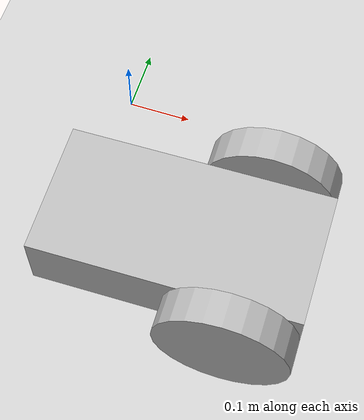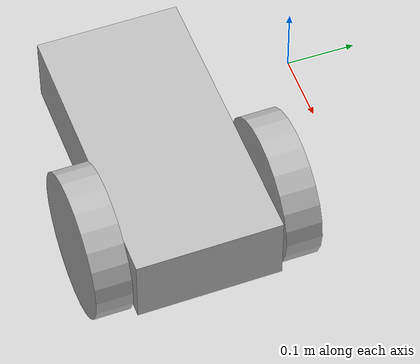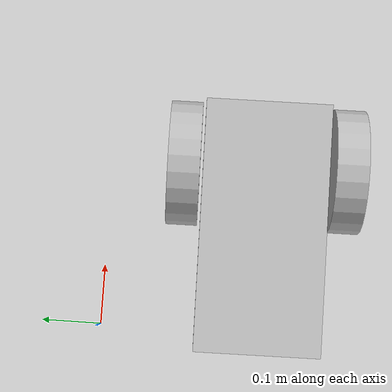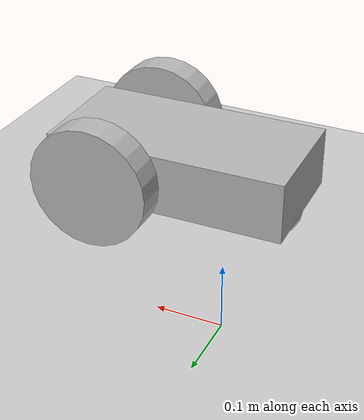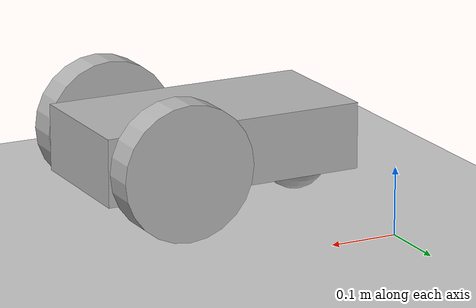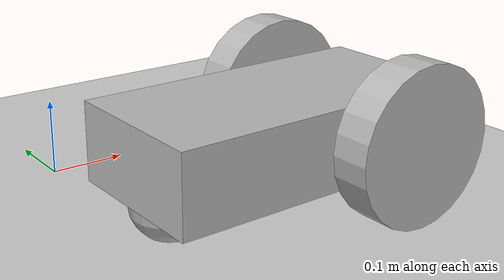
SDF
<sdf version="1.6">
 <world name="default">
  <light name="sun" type="directional">
   <pose>0 0 10 0 -0 0</pose>
   <diffuse>0.8 0.8 0.8 1</diffuse>
   <specular>0.2 0.2 0.2 1</specular>
   <attenuation>
    <range>1000</range>
    <constant>0.9</constant>
    <linear>0.01</linear>
    <quadratic>0.001</quadratic>
   </attenuation>
   <direction>-0.5 0.1 -0.9</direction>
  </light>
  <model name="ground_plane">
   <static>1</static>
   <link name="link">
    <collision name="collision">
     <geometry><plane><normal>0 0 1</normal><size>100 100</size></plane></geometry>
     <surface>
      <contact><collide_bitmask>65535</collide_bitmask></contact>
      <friction><ode><mu>100</mu><mu2>50</mu2></ode></friction>
     </surface>
    </collision>
    <visual name="visual">
     <cast_shadows>0</cast_shadows>
     <geometry><plane><normal>0 0 1</normal><size>100 100</size></plane></geometry>
     <material>
      <script><uri>file://media/materials/scripts/gazebo.material</uri><name>Gazebo/Grey</name></script>
     </material>
    </visual>
   </link>
  </model>
  <gravity>0 0 -9.8</gravity>
  <magnetic_field>6e-06 2.3e-05 -4.2e-05</magnetic_field>
  <atmosphere type="adiabatic"/>
  <physics name="default_physics" default="0" type="ode">
   <max_step_size>0.001</max_step_size>
   <real_time_factor>1</real_time_factor>
   <real_time_update_rate>1000</real_time_update_rate>
  </physics>
  <scene><ambient>0.4 0.4 0.4 1</ambient><background>0.7 0.7 0.7 1</background><shadows>1</shadows></scene>
  <spherical_coordinates>
   <surface_model>EARTH_WGS84</surface_model>
   <latitude_deg>0</latitude_deg>
   <longitude_deg>0</longitude_deg>
   <elevation>0</elevation>
   <heading_deg>0</heading_deg>
  </spherical_coordinates>
  <model name="2wd_mr">
   <static>0</static>
   <link name="chassis">
    <pose>0 0 0.1 0 -0 0</pose>
    <collision name="collision"><geometry><box><size>0.4 0.2 0.1</size></box></geometry></collision>
    <visual name="visual"><geometry><box><size>0.4 0.2 0.1</size></box></geometry></visual>
    <collision name="caster_collision">
     <pose>-0.15 0 -0.05 0 -0 0</pose>
     <geometry><sphere><radius>0.05</radius></sphere></geometry>
     <surface><friction><ode><mu>0</mu><mu2>0</mu2><slip1>1</slip1><slip2>1</slip2></ode></friction></surface>
    </collision>
    <visual name="caster_visual">
     <pose>-0.15 0 -0.05 0 -0 0</pose>
     <geometry><sphere><radius>0.05</radius></sphere></geometry>
    </visual>
    <inertial>
     <inertia><ixx>1</ixx><ixy>0</ixy><ixz>0</ixz><iyy>1</iyy><iyz>0</iyz><izz>1</izz></inertia>
     <mass>1</mass>
    </inertial>
   </link>
   <link name="left_wheel">
    <pose>0.1 0.13 0.1 -0 1.5707 1.5707</pose>
    <collision name="collision">
     <geometry><cylinder><radius>0.1</radius><length>0.05</length></cylinder></geometry>
    </collision>
    <visual name="visual">
     <geometry><cylinder><radius>0.1</radius><length>0.05</length></cylinder></geometry>
    </visual>
    <inertial>
     <inertia><ixx>1</ixx><ixy>0</ixy><ixz>0</ixz><iyy>1</iyy><iyz>0</iyz><izz>1</izz></inertia>
     <mass>1</mass>
    </inertial>
   </link>
   <link name="right_wheel">
    <pose>0.1 -0.13 0.1 -0 1.5707 1.5707</pose>
    <collision name="collision">
     <geometry><cylinder><radius>0.1</radius><length>0.05</length></cylinder></geometry>
    </collision>
    <visual name="visual">
     <geometry><cylinder><radius>0.1</radius><length>0.05</length></cylinder></geometry>
    </visual>
    <inertial>
     <inertia><ixx>1</ixx><ixy>0</ixy><ixz>0</ixz><iyy>1</iyy><iyz>0</iyz><izz>1</izz></inertia>
     <mass>1</mass>
    </inertial>
   </link>
   <joint name="left_wheel_hinge" type="revolute">
    <pose>0 0 -0.03 0 -0 0</pose>
    <child>left_wheel</child>
    <parent>chassis</parent>
    <axis>
     <xyz>0 1 0</xyz>
     <use_parent_model_frame>1</use_parent_model_frame>
     <limit><lower>-1e+16</lower><upper>1e+16</upper></limit>
     <dynamics><spring_reference>0</spring_reference><spring_stiffness>0</spring_stiffness></dynamics>
    </axis>
   </joint>
   <joint name="right_wheel_hinge" type="revolute">
    <pose>0 0 0.03 0 -0 0</pose>
    <child>right_wheel</child>
    <parent>chassis</parent>
    <axis>
     <xyz>0 1 0</xyz>
     <use_parent_model_frame>1</use_parent_model_frame>
     <limit><lower>-1e+16</lower><upper>1e+16</upper></limit>
     <dynamics><spring_reference>0</spring_reference><spring_stiffness>0</spring_stiffness></dynamics>
    </axis>
   </joint>
   <pose>0.173081 -0.255365 2e-06 9e-06 8e-06 0.013023</pose>
  </model>
 </world>
</sdf>
